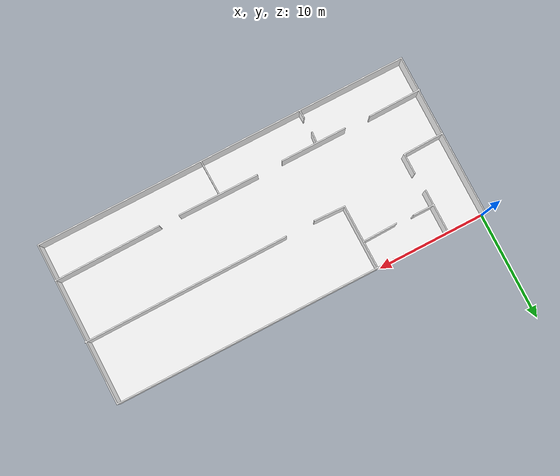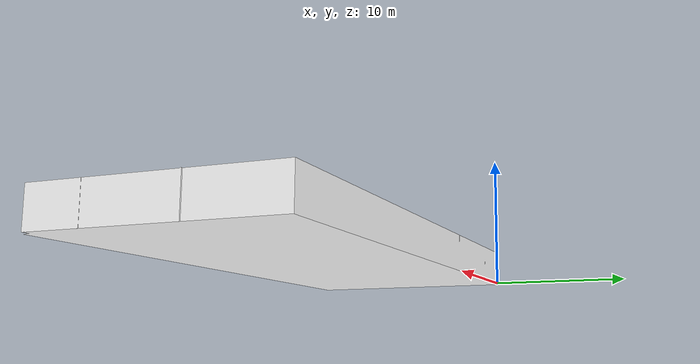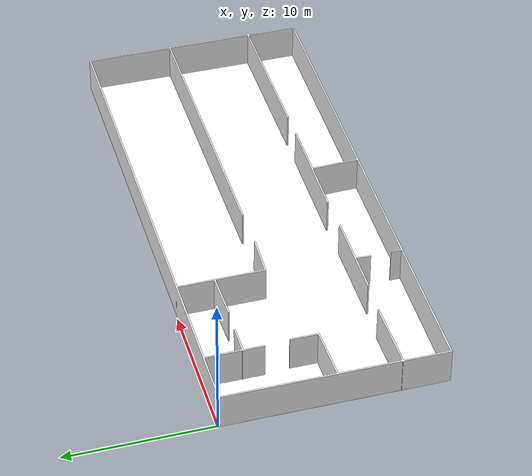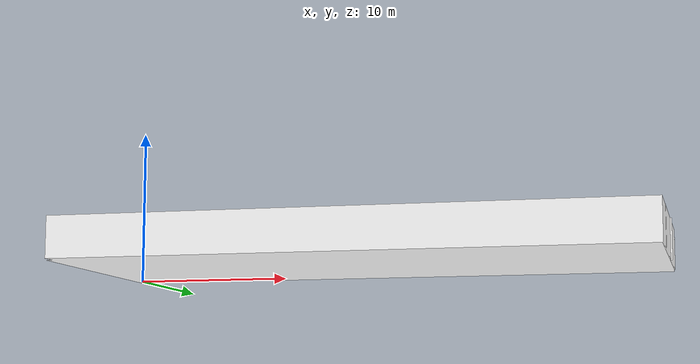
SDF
<?xml version='1.0' encoding='utf-8'?>
<sdf version="1.7">
  <model name="my_world_L1">
    <static>true</static>
    <link name="floor_1">
      <visual name="visual">
        <geometry>
          <mesh>
            <uri>model://my_world_L1/meshes/floor_1.obj</uri>
          </mesh>
        </geometry>
        <material>
          <diffuse>1.0 1.0 1.0</diffuse>
          <specular>0.1 0.1 0.1</specular>
          <pbr>
            <metal>
              <metalness>0.0</metalness>
              <albedo_map>model://my_world_L1/meshes/blue_linoleum.png</albedo_map>
            </metal>
          </pbr>
          <script>
            <uri>model://my_world_L1/meshes/</uri>
            <name>floor_1_Diffuse</name>
          </script>
        </material>
      </visual>
      <collision name="collision">
        <geometry>
          <mesh>
            <uri>model://my_world_L1/meshes/floor_1.obj</uri>
          </mesh>
        </geometry>
        <surface>
          <contact>
            <collide_bitmask>0x01</collide_bitmask>
          </contact>
        </surface>
      </collision>
    </link>
    <link name="floor_2">
      <visual name="visual">
        <geometry>
          <mesh>
            <uri>model://my_world_L1/meshes/floor_2.obj</uri>
          </mesh>
        </geometry>
        <material>
          <diffuse>1.0 1.0 1.0</diffuse>
          <specular>0.1 0.1 0.1</specular>
          <pbr>
            <metal>
              <metalness>0.0</metalness>
              <albedo_map>model://my_world_L1/meshes/blue_linoleum.png</albedo_map>
            </metal>
          </pbr>
          <script>
            <uri>model://my_world_L1/meshes/</uri>
            <name>floor_2_Diffuse</name>
          </script>
        </material>
      </visual>
      <collision name="collision">
        <geometry>
          <mesh>
            <uri>model://my_world_L1/meshes/floor_2.obj</uri>
          </mesh>
        </geometry>
        <surface>
          <contact>
            <collide_bitmask>0x01</collide_bitmask>
          </contact>
        </surface>
      </collision>
    </link>
    <link name="wall_1">
      <visual name="wall_1">
        <geometry>
          <mesh>
            <uri>model://my_world_L1/meshes/wall_1.obj</uri>
          </mesh>
        </geometry>
        <transparency>0.0</transparency>
        <material>
          <diffuse>1.0 1.0 1.0</diffuse>
          <specular>0.1 0.1 0.1</specular>
          <pbr>
            <metal>
              <metalness>0.0</metalness>
              <albedo_map>model://my_world_L1/meshes/default.png</albedo_map>
            </metal>
          </pbr>
          <script>
            <uri>model://my_world_L1/meshes/</uri>
            <name>wall_1_Diffuse</name>
          </script>
        </material>
      </visual>
      <collision name="collision">
        <geometry>
          <mesh>
            <uri>model://my_world_L1/meshes/wall_1.obj</uri>
          </mesh>
        </geometry>
        <surface>
          <contact>
            <collide_bitmask>0x01</collide_bitmask>
          </contact>
        </surface>
      </collision>
      <pose>-0.08369485550906486 -15.20674566278495 0 0 0 0</pose>
    </link>
  </model>
</sdf>
